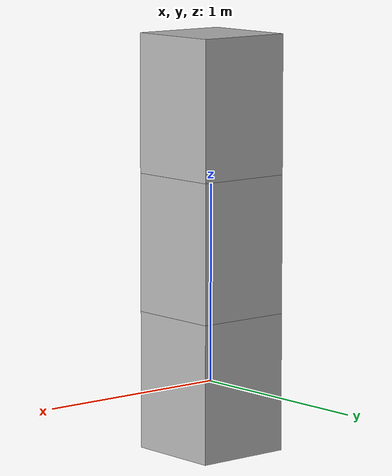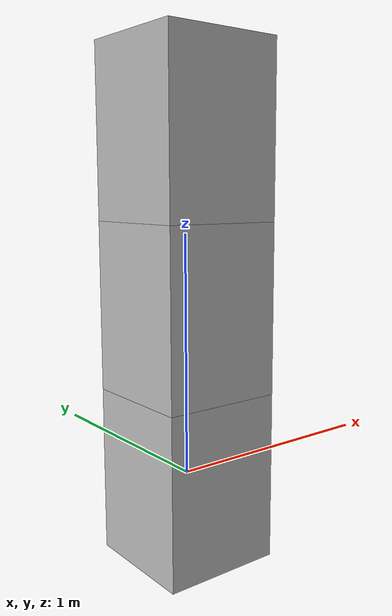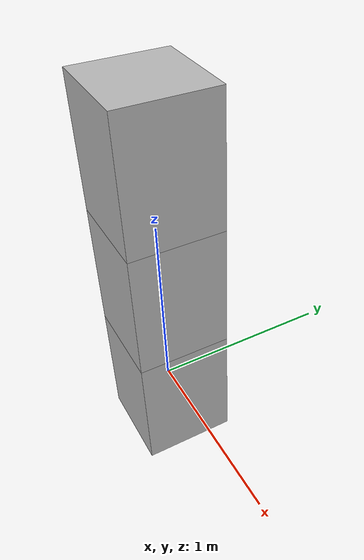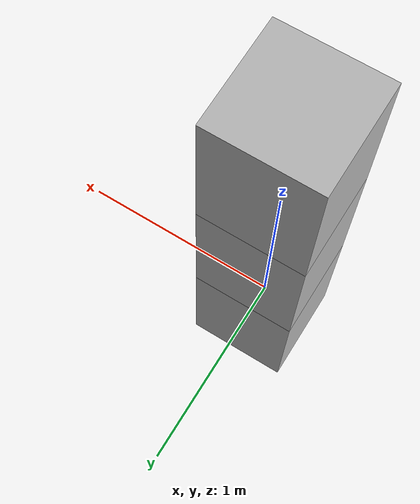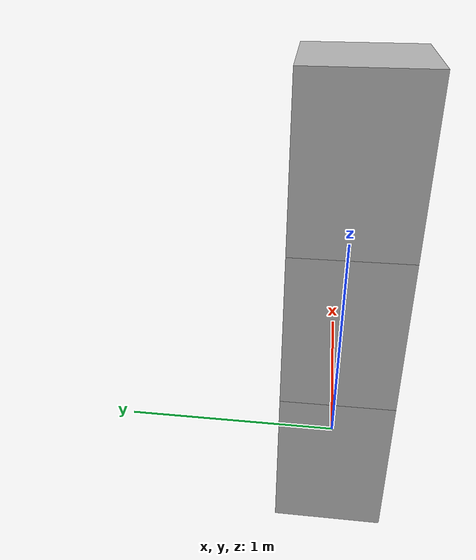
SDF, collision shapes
<?xml version="1.0" ?>
<sdf version="1.6">
  <model name="basic_box">

    <link name="link">
      <inertial>
        <mass>2</mass>
        <inertia>
          <ixx>0.041666667</ixx>
          <ixy>0</ixy>
          <ixz>0</ixz>
          <iyy>0.056666667</iyy>
          <iyz>0</iyz>
          <izz>0.068333333</izz>
        </inertia>
      </inertial>
      <collision name="collision">
        <pose>0 0 0 0 0 0</pose>
        <geometry>
          <box>
            <size>0.5 0.5 0.7</size>
          </box>
        </geometry>
        <surface>
          <friction>
            <ode>
              <mu>1.0</mu>
              <mu2>1.0</mu2>
            </ode>
          </friction>
          <contact>
            <ode>
              <kp>10000000.0</kp>
              <kd>1.0</kd>
              <min_depth>0.001</min_depth>
              <max_vel>0.1</max_vel>
            </ode>
          </contact>
        </surface>
      </collision>
      <visual name="visual">
        <pose>0 0 -0.35 0 0 0</pose>
        <geometry>
          <mesh>
            <uri>model://basic_box/meshes/basic_box.dae</uri>
            <scale>1.23931896 1.23931896 1.763046544</scale>
          </mesh>
        </geometry>
      </visual>
    </link>

    <link name="link2">
      <inertial>
        <mass>2</mass>
        <inertia>
          <ixx>0.041666667</ixx>
          <ixy>0</ixy>
          <ixz>0</ixz>
          <iyy>0.056666667</iyy>
          <iyz>0</iyz>
          <izz>0.068333333</izz>
        </inertia>
      </inertial>
      <collision name="collision2">
        <pose>0 0 0.7 0 0 0</pose>
        <geometry>
          <box>
            <size>0.5 0.5 0.7</size>
          </box>
        </geometry>
        <surface>
          <friction>
            <ode>
              <mu>1.0</mu>
              <mu2>1.0</mu2>
            </ode>
          </friction>
          <contact>
            <ode>
              <kp>10000000.0</kp>
              <kd>1.0</kd>
              <min_depth>0.001</min_depth>
              <max_vel>0.1</max_vel>
            </ode>
          </contact>
        </surface>
      </collision>
      <visual name="visual2">
        <pose>0 0 0.35 0 0 0</pose>
        <geometry>
          <mesh>
            <uri>model://basic_box/meshes/basic_box.dae</uri>
            <scale>1.23931896 1.23931896 1.763046544</scale>
          </mesh>
        </geometry>
      </visual>
    </link>

    <link name="link3">
      <inertial>
        <mass>2</mass>
        <inertia>
          <ixx>0.041666667</ixx>
          <ixy>0</ixy>
          <ixz>0</ixz>
          <iyy>0.056666667</iyy>
          <iyz>0</iyz>
          <izz>0.068333333</izz>
        </inertia>
      </inertial>
      <collision name="collision3">
        <pose>0 0 1.4 0 0 0</pose>
        <geometry>
          <box>
            <size>0.5 0.5 0.7</size>
          </box>
        </geometry>
        <surface>
          <friction>
            <ode>
              <mu>1.0</mu>
              <mu2>1.0</mu2>
            </ode>
          </friction>
          <contact>
            <ode>
              <kp>10000000.0</kp>
              <kd>1.0</kd>
              <min_depth>0.001</min_depth>
              <max_vel>0.1</max_vel>
            </ode>
          </contact>
        </surface>
      </collision>
      <visual name="visual3">
        <pose>0 0 1.05 0 0 0</pose>
        <geometry>
          <mesh>
            <uri>model://basic_box/meshes/basic_box.dae</uri>
            <scale>1.23931896 1.23931896 1.763046544</scale>
          </mesh>
        </geometry>
      </visual>
    </link>

  </model>
</sdf>
